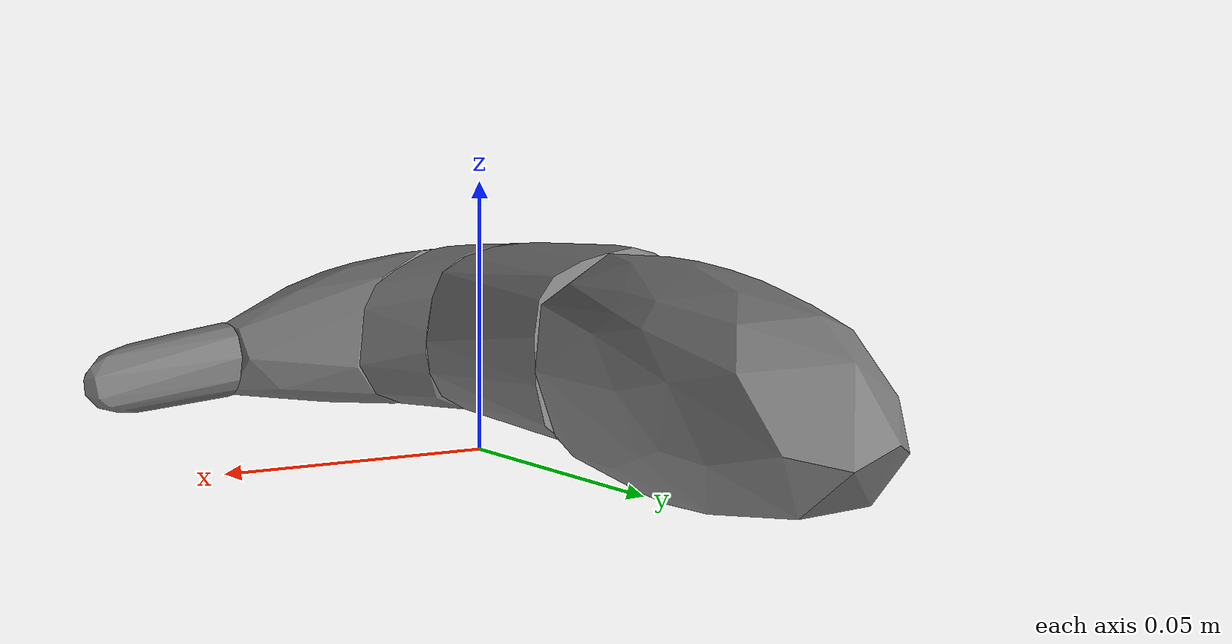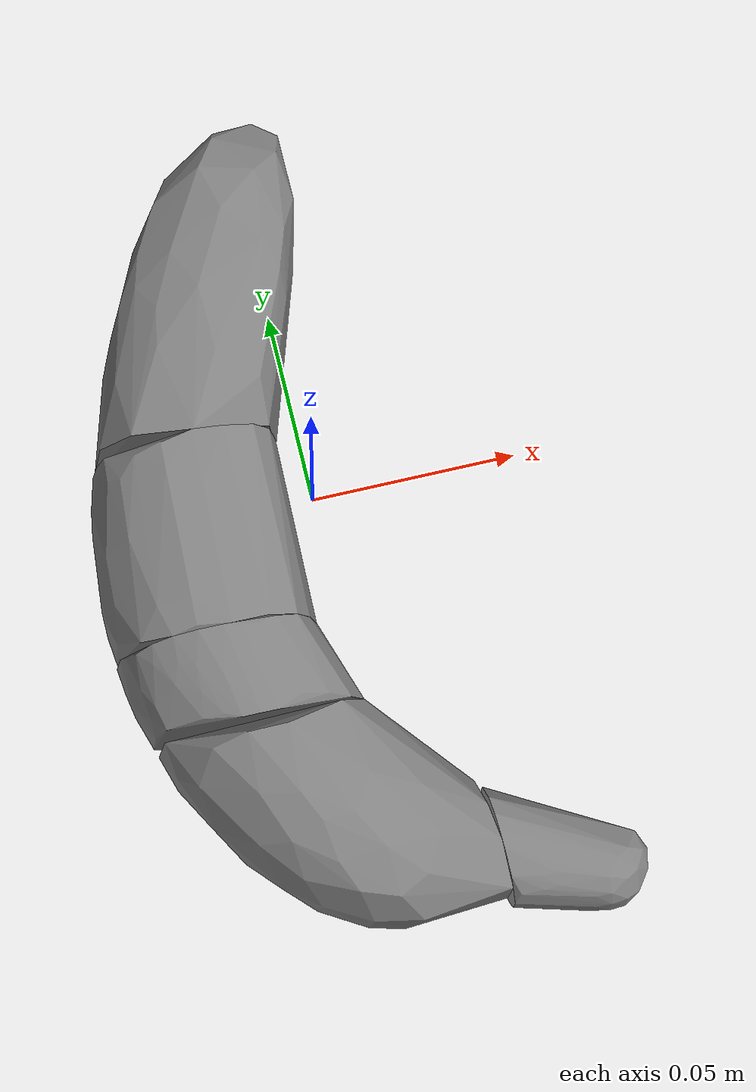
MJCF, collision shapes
<mujoco model="banana">
  <asset>
    <texture type="2d" name="banana_tex" file="Texture.png"/>
    <material name="banana_mat" texture="banana_tex" specular="0.3" shininess="0.1"/>
    <mesh name="banana_vis" file="banana_libero.obj" scale="1 1 1"/>
    <mesh name="banana_col_0" file="banana_col_0.obj" scale="1 1 1"/>
    <mesh name="banana_col_1" file="banana_col_1.obj" scale="1 1 1"/>
    <mesh name="banana_col_2" file="banana_col_2.obj" scale="1 1 1"/>
    <mesh name="banana_col_3" file="banana_col_3.obj" scale="1 1 1"/>
    <mesh name="banana_col_4" file="banana_col_4.obj" scale="1 1 1"/>
  </asset>
  <worldbody>
    <body>
      <body name="object">
        <geom type="mesh" mesh="banana_vis" material="banana_mat" group="1" contype="0" conaffinity="0"/>
        <geom type="mesh" mesh="banana_col_0" group="0" density="100" friction="0.95 0.3 0.1" solimp="0.998 0.998 0.001" solref="0.001 1"/>
        <geom type="mesh" mesh="banana_col_1" group="0" density="100" friction="0.95 0.3 0.1" solimp="0.998 0.998 0.001" solref="0.001 1"/>
        <geom type="mesh" mesh="banana_col_2" group="0" density="100" friction="0.95 0.3 0.1" solimp="0.998 0.998 0.001" solref="0.001 1"/>
        <geom type="mesh" mesh="banana_col_3" group="0" density="100" friction="0.95 0.3 0.1" solimp="0.998 0.998 0.001" solref="0.001 1"/>
        <geom type="mesh" mesh="banana_col_4" group="0" density="100" friction="0.95 0.3 0.1" solimp="0.998 0.998 0.001" solref="0.001 1"/>
      </body>
      <site rgba="0 0 0 0" size="0.005" pos="0 0 0" name="bottom_site"/>
      <site rgba="0 0 0 0" size="0.005" pos="0 0 0.03646" name="top_site"/>
      <site rgba="0 0 0 0" size="0.005" pos="0.10125 0 0" name="horizontal_radius_site"/>
    </body>
  </worldbody>
</mujoco>
